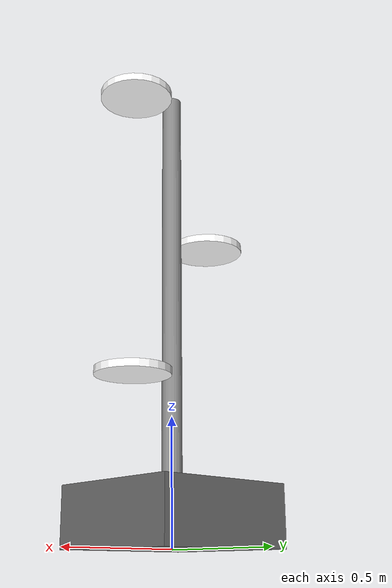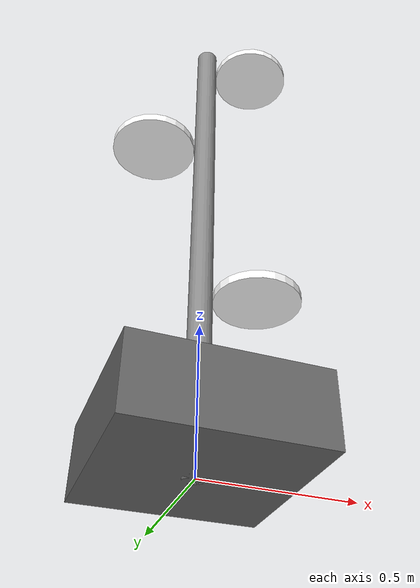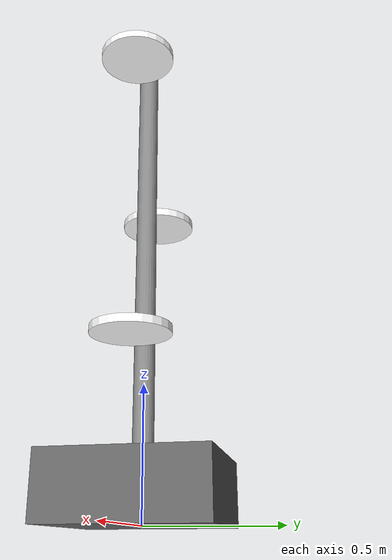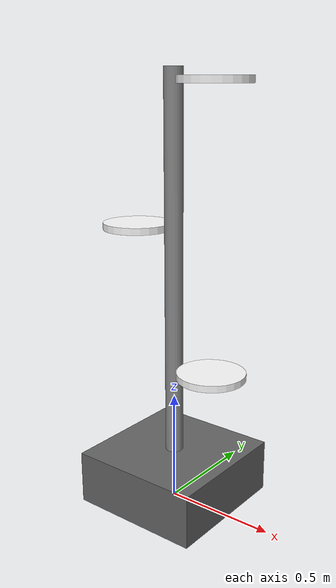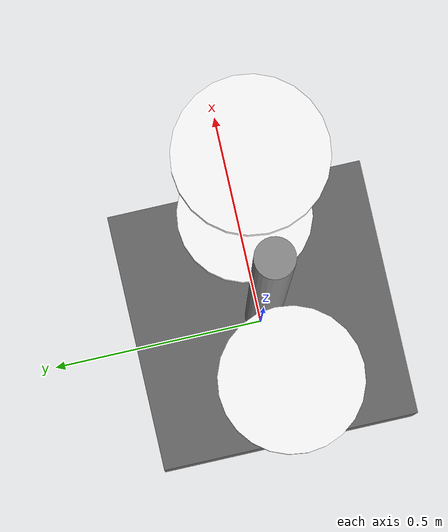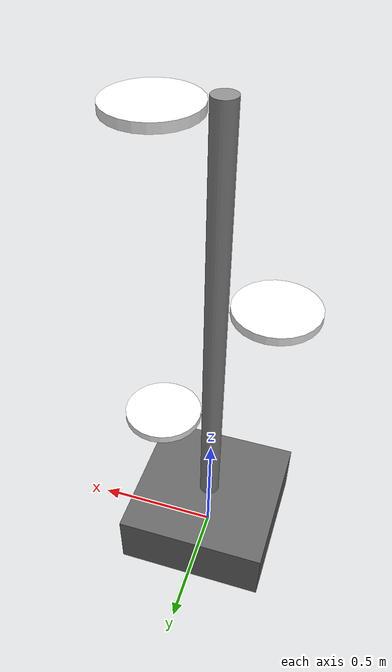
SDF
<?xml version="1.0"?>
<sdf version="1.7">
  <model name="bird_reflective_spinner">
    <!-- Ground-mounted base plate for structural stability. -->
    <link name="base_plate">
      <pose>0 0 0.12 0 0 0</pose>
      <inertial>
        <mass>10.0</mass>
        <inertia>
          <ixx>0.25</ixx>
          <iyy>0.25</iyy>
          <izz>0.18</izz>
          <ixy>0.0</ixy>
          <ixz>0.0</ixz>
          <iyz>0.0</iyz>
        </inertia>
      </inertial>

      <collision name="plate_collision">
        <geometry>
          <box>
            <size>0.60 0.60 0.24</size>
          </box>
        </geometry>
      </collision>

      <visual name="plate_visual">
        <geometry>
          <box>
            <size>0.60 0.60 0.24</size>
          </box>
        </geometry>
        <material>
          <ambient>0.3 0.3 0.3 1.0</ambient>
          <diffuse>0.4 0.4 0.4 1.0</diffuse>
          <specular>0.15 0.15 0.15 1.0</specular>
        </material>
      </visual>
    </link>

    <!-- Central vertical pole anchored to the base plate. -->
    <link name="central_pole">
      <pose>0 0 0.95 0 0 0</pose>
      <inertial>
        <mass>3.5</mass>
        <inertia>
          <ixx>0.04</ixx>
          <iyy>0.04</iyy>
          <izz>0.008</izz>
          <ixy>0.0</ixy>
          <ixz>0.0</ixz>
          <iyz>0.0</iyz>
        </inertia>
      </inertial>

      <collision name="pole_collision">
        <geometry>
          <cylinder>
            <radius>0.04</radius>
            <length>1.90</length>
          </cylinder>
        </geometry>
      </collision>

      <visual name="pole_visual">
        <geometry>
          <cylinder>
            <radius>0.04</radius>
            <length>1.90</length>
          </cylinder>
        </geometry>
        <material>
          <ambient>0.45 0.45 0.45 1.0</ambient>
          <diffuse>0.55 0.55 0.55 1.0</diffuse>
          <specular>0.2 0.2 0.2 1.0</specular>
        </material>
      </visual>
    </link>

    <!-- First rotating disc positioned at lower height on the pole. -->
    <link name="spinner_disc_lower">
      <pose>0.20 0 0.65 0 0 0</pose>
      <inertial>
        <mass>0.6</mass>
        <inertia>
          <ixx>0.002</ixx>
          <iyy>0.002</iyy>
          <izz>0.003</izz>
          <ixy>0.0</ixy>
          <ixz>0.0</ixz>
          <iyz>0.0</iyz>
        </inertia>
      </inertial>

      <collision name="disc_lower_collision">
        <geometry>
          <cylinder>
            <radius>0.15</radius>
            <length>0.03</length>
          </cylinder>
        </geometry>
      </collision>

      <visual name="disc_lower_visual">
        <geometry>
          <cylinder>
            <radius>0.15</radius>
            <length>0.03</length>
          </cylinder>
        </geometry>
        <material>
          <ambient>0.9 0.9 0.9 1.0</ambient>
          <diffuse>1.0 1.0 1.0 1.0</diffuse>
          <specular>0.8 0.8 0.8 1.0</specular>
        </material>
      </visual>
    </link>

    <!-- Second rotating disc positioned at middle height on the pole. -->
    <link name="spinner_disc_middle">
      <pose>-0.20 0 1.25 0 0 0</pose>
      <inertial>
        <mass>0.6</mass>
        <inertia>
          <ixx>0.002</ixx>
          <iyy>0.002</iyy>
          <izz>0.003</izz>
          <ixy>0.0</ixy>
          <ixz>0.0</ixz>
          <iyz>0.0</iyz>
        </inertia>
      </inertial>

      <collision name="disc_middle_collision">
        <geometry>
          <cylinder>
            <radius>0.15</radius>
            <length>0.03</length>
          </cylinder>
        </geometry>
      </collision>

      <visual name="disc_middle_visual">
        <geometry>
          <cylinder>
            <radius>0.15</radius>
            <length>0.03</length>
          </cylinder>
        </geometry>
        <material>
          <ambient>0.9 0.9 0.9 1.0</ambient>
          <diffuse>1.0 1.0 1.0 1.0</diffuse>
          <specular>0.8 0.8 0.8 1.0</specular>
        </material>
      </visual>
    </link>

    <!-- Third rotating disc positioned at upper height on the pole. -->
    <link name="spinner_disc_upper">
      <pose>0.20 0 1.85 0 0 0</pose>
      <inertial>
        <mass>0.6</mass>
        <inertia>
          <ixx>0.002</ixx>
          <iyy>0.002</iyy>
          <izz>0.003</izz>
          <ixy>0.0</ixy>
          <ixz>0.0</ixz>
          <iyz>0.0</iyz>
        </inertia>
      </inertial>

      <collision name="disc_upper_collision">
        <geometry>
          <cylinder>
            <radius>0.15</radius>
            <length>0.03</length>
          </cylinder>
        </geometry>
      </collision>

      <visual name="disc_upper_visual">
        <geometry>
          <cylinder>
            <radius>0.15</radius>
            <length>0.03</length>
          </cylinder>
        </geometry>
        <material>
          <ambient>0.9 0.9 0.9 1.0</ambient>
          <diffuse>1.0 1.0 1.0 1.0</diffuse>
          <specular>0.8 0.8 0.8 1.0</specular>
        </material>
      </visual>
    </link>

    <!-- Fixed joint connecting base plate to central pole. -->
    <joint name="base_to_pole_joint" type="fixed">
      <parent>base_plate</parent>
      <child>central_pole</child>
      <pose>0 0 -0.71 0 0 0</pose>
    </joint>

    <!-- Continuous revolute joint rotating the lower disc around the pole (Z-axis). -->
    <joint name="pole_to_disc_lower_joint" type="revolute">
      <parent>central_pole</parent>
      <child>spinner_disc_lower</child>
      <pose>0 0 0.3 0 0 0</pose>
      <axis>
        <xyz>0 0 1</xyz>
        <limit>
          <lower>-3.14159265</lower>
          <upper>3.14159265</upper>
          <effort>8.0</effort>
          <velocity>3.0</velocity>
        </limit>
      </axis>
      <dynamics>
        <friction>0.3</friction>
        <damping>0.05</damping>
        <spring_reference>0</spring_reference>
        <spring_stiffness>0</spring_stiffness>
      </dynamics>
    </joint>

    <!-- Continuous revolute joint rotating the middle disc around the pole (Z-axis). -->
    <joint name="pole_to_disc_middle_joint" type="revolute">
      <parent>central_pole</parent>
      <child>spinner_disc_middle</child>
      <pose>0 0 0.3 0 0 0</pose>
      <axis>
        <xyz>0 0 1</xyz>
        <limit>
          <lower>-3.14159265</lower>
          <upper>3.14159265</upper>
          <effort>8.0</effort>
          <velocity>3.0</velocity>
        </limit>
      </axis>
      <dynamics>
        <friction>0.3</friction>
        <damping>0.05</damping>
        <spring_reference>0</spring_reference>
        <spring_stiffness>0</spring_stiffness>
      </dynamics>
    </joint>

    <!-- Continuous revolute joint rotating the upper disc around the pole (Z-axis). -->
    <joint name="pole_to_disc_upper_joint" type="revolute">
      <parent>central_pole</parent>
      <child>spinner_disc_upper</child>
      <pose>0 0 0.3 0 0 0</pose>
      <axis>
        <xyz>0 0 1</xyz>
        <limit>
          <lower>-3.14159265</lower>
          <upper>3.14159265</upper>
          <effort>8.0</effort>
          <velocity>3.0</velocity>
        </limit>
      </axis>
      <dynamics>
        <friction>0.3</friction>
        <damping>0.05</damping>
        <spring_reference>0</spring_reference>
        <spring_stiffness>0</spring_stiffness>
      </dynamics>
    </joint>
  </model>
</sdf>
